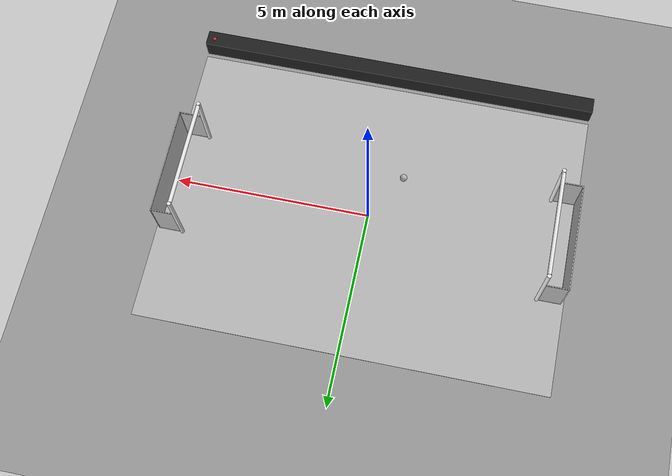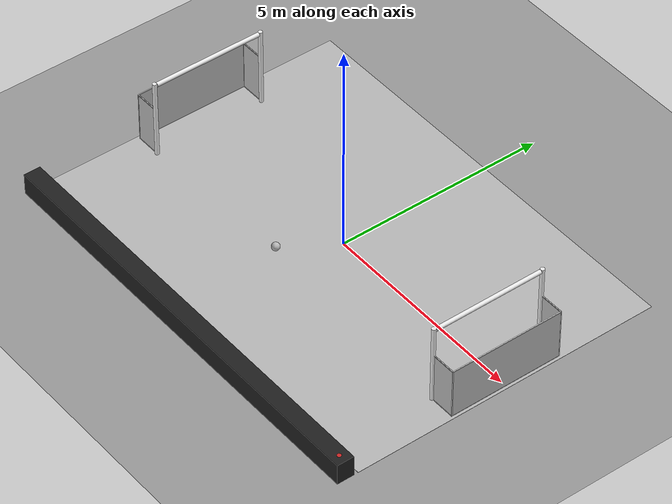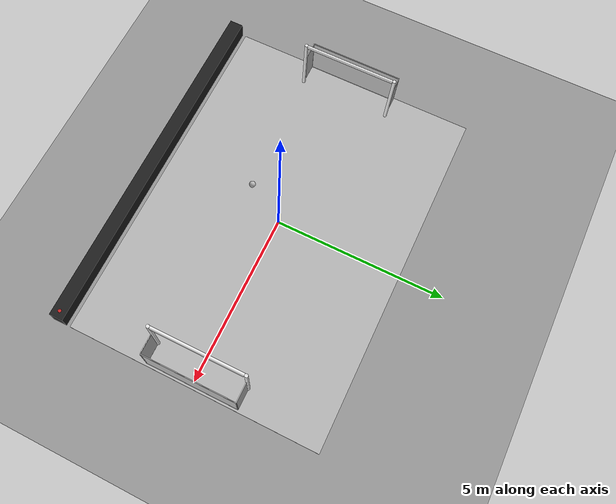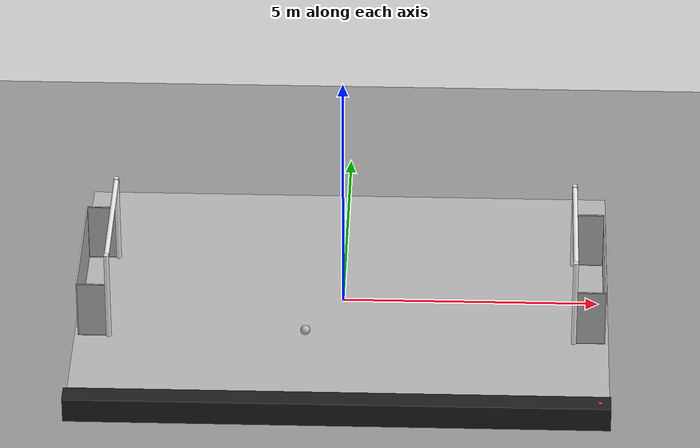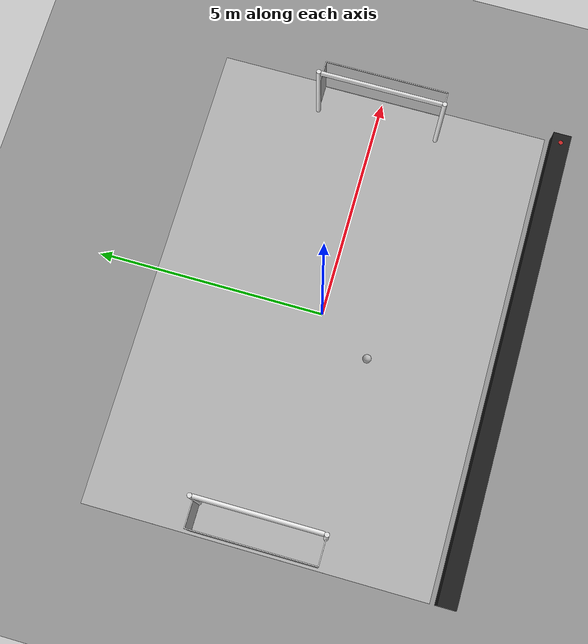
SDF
<?xml version="1.0" ?>
<sdf version="1.4">
	<world name="default">
		<scene>
			<shadows>false</shadows>
		</scene>
		<gui fullscreen='0'>
			<camera name="camera">
				<pose>3.0 0.0 1.0 0.0 0.3 3.14</pose>
			</camera>
		</gui>
		<physics type="ode">
			<gravity>0 0 -9.81</gravity>
			<real_time_update_rate>2000</real_time_update_rate>
			<max_step_size>0.0005</max_step_size>
			<ode>
				<solver>
					<type>quick</type>
					<iters>50</iters>
					<sor>1.4</sor>
				</solver>
				<constraints>
 					<cfm>0.0</cfm>
					<erp>0.2</erp>
					<contact_max_correcting_vel>100.0</contact_max_correcting_vel>
					<contact_surface_layer>0.0</contact_surface_layer>
				</constraints>
			</ode>
		</physics>
		<include>
			<uri>model://soft_ground_plane</uri>
		</include>
		<include>
			<uri>model://teensize_field</uri>
		</include>
		<include>
			<uri>model://teensize_ball</uri>
			<pose>-0.700000 -1.180000 0.095 0 0 0</pose>
		</include>
		<include>
			<uri>model://teensize_goal</uri>
			<pose>4.525 0 0 0 0 0</pose>
		</include>

		<include>
			<uri>model://teensize_goal</uri>
			<pose>-4.525 0 0 0 0 3.141592</pose>
		</include>

		<include>
			<uri>model://sun</uri>
		</include>
	</world>
</sdf>

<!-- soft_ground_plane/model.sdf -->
<sdf version="1.5">
  <model name="soft_ground_plane">
    <static>true</static>
    <link name="link">
      <collision name="collision">
        <geometry>
          <plane>
            <normal>0 0 1</normal>
            <size>100 100</size>
          </plane>
        </geometry>
        <surface>
          <friction>
            <ode>
              <mu>50</mu>
              <mu2>50</mu2>
            </ode>
          </friction>
          <contact>
            <ode>
              <soft_cfm>0.0</soft_cfm>
              <soft_erp>0.2</soft_erp>
            </ode>
          </contact>
        </surface>
      </collision>
      <visual name="visual">
        <cast_shadows>false</cast_shadows>
        <geometry>
          <plane>
            <normal>0 0 1</normal>
            <size>100 100</size>
          </plane>
        </geometry>
        <material>
          <script>
            <uri>file://media/materials/scripts/gazebo.material</uri>
            <name>Gazebo/Grey</name>
          </script>
        </material>
      </visual>
    </link>
  </model>
</sdf>

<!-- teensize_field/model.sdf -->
<sdf version="1.5">
  <model name="teensize_field">
    <static>true</static>

    <link name="field">
      <pose>0 0 0.005 0 0 0</pose>
      <visual name="carpet">
        <cast_shadows>false</cast_shadows>
        <geometry>
          <plane>
            <normal>0 0 1</normal>
            <size>10.40 7.40</size>
          </plane>
        </geometry>
        <material>
          <script>
            <uri>model://teensize_field/materials/scripts/</uri>
            <uri>model://teensize_field/materials/textures/</uri>
            <name>RoboCup/Carpet</name>
          </script>
        </material>
      </visual>

      <visual name="sideline_1">
        <pose>0 3 0.001 0 0 0</pose>
        <cast_shadows>false</cast_shadows>
        <geometry>
          <plane>
            <normal>0 0 1</normal>
            <size>9.05 0.05</size>
          </plane>
        </geometry>
        <material>
          <script>
            <uri>file://media/materials/scripts/gazebo.material</uri>
            <name>Gazebo/White</name>
          </script>
        </material>
      </visual>

      <visual name="sideline_2">
        <pose>0 -3 0.001 0 0 0</pose>
        <cast_shadows>false</cast_shadows>
        <geometry>
          <plane>
            <normal>0 0 1</normal>
            <size>9.05 0.05</size>
          </plane>
        </geometry>
        <material>
          <script>
            <uri>file://media/materials/scripts/gazebo.material</uri>
            <name>Gazebo/White</name>
          </script>
        </material>
      </visual>

      <visual name="endline_1">
        <pose>-4.5 0 0.001 0 0 0</pose>
        <cast_shadows>false</cast_shadows>
        <geometry>
          <plane>
            <normal>0 0 1</normal>
            <size>0.05 6.05</size>
          </plane>
        </geometry>
        <material>
          <script>
            <uri>file://media/materials/scripts/gazebo.material</uri>
            <name>Gazebo/White</name>
          </script>
        </material>
      </visual>

      <visual name="endline_2">
        <pose>4.5 0 0.001 0 0 0</pose>
        <cast_shadows>false</cast_shadows>
        <geometry>
          <plane>
            <normal>0 0 1</normal>
            <size>0.05 6.05</size>
          </plane>
        </geometry>
        <material>
          <script>
            <uri>file://media/materials/scripts/gazebo.material</uri>
            <name>Gazebo/White</name>
          </script>
        </material>
      </visual>

      <visual name="halfway_line">
        <pose>0 0 0.001 0 0 0</pose>
        <cast_shadows>false</cast_shadows>
        <geometry>
          <plane>
            <normal>0 0 1</normal>
            <size>0.05 6.05</size>
          </plane>
        </geometry>
        <material>
          <script>
            <uri>file://media/materials/scripts/gazebo.material</uri>
            <name>Gazebo/White</name>
          </script>
        </material>
      </visual>

      <visual name="area_1_line_a">
        <pose>-3.50 0 0.001 0 0 0</pose>
        <cast_shadows>false</cast_shadows>
        <geometry>
          <plane>
            <normal>0 0 1</normal>
            <size>0.05 5.05</size>
          </plane>
        </geometry>
        <material>
          <script>
            <uri>file://media/materials/scripts/gazebo.material</uri>
            <name>Gazebo/White</name>
          </script>
        </material>
      </visual>

      <visual name="area_2_line_a">
        <pose>-4.00 2.50 0.001 0 0 0</pose>
        <cast_shadows>false</cast_shadows>
        <geometry>
          <plane>
            <normal>0 0 1</normal>
            <size>1.05 0.05</size>
          </plane>
        </geometry>
        <material>
          <script>
            <uri>file://media/materials/scripts/gazebo.material</uri>
            <name>Gazebo/White</name>
          </script>
        </material>
      </visual>

      <visual name="area_3_line_a">
        <pose>-4.00 -2.50 0.001 0 0 0</pose>
        <cast_shadows>false</cast_shadows>
        <geometry>
          <plane>
            <normal>0 0 1</normal>
            <size>1.05 0.05</size>
          </plane>
        </geometry>
        <material>
          <script>
            <uri>file://media/materials/scripts/gazebo.material</uri>
            <name>Gazebo/White</name>
          </script>
        </material>
      </visual>

      <visual name="area_1_line_b">
        <pose>3.50 0 0.001 0 0 0</pose>
        <cast_shadows>false</cast_shadows>
        <geometry>
          <plane>
            <normal>0 0 1</normal>
            <size>0.05 5.05</size>
          </plane>
        </geometry>
        <material>
          <script>
            <uri>file://media/materials/scripts/gazebo.material</uri>
            <name>Gazebo/White</name>
          </script>
        </material>
      </visual>

      <visual name="area_2_line_b">
        <pose>4.00 2.50 0.001 0 0 0</pose>
        <cast_shadows>false</cast_shadows>
        <geometry>
          <plane>
            <normal>0 0 1</normal>
            <size>1.05 0.05</size>
          </plane>
        </geometry>
        <material>
          <script>
            <uri>file://media/materials/scripts/gazebo.material</uri>
            <name>Gazebo/White</name>
          </script>
        </material>
      </visual>

      <visual name="area_3_line_b">
        <pose>4.00 -2.50 0.001 0 0 0</pose>
        <cast_shadows>false</cast_shadows>
        <geometry>
          <plane>
            <normal>0 0 1</normal>
            <size>1.05 0.05</size>
          </plane>
        </geometry>
        <material>
          <script>
            <uri>file://media/materials/scripts/gazebo.material</uri>
            <name>Gazebo/White</name>
          </script>
        </material>
      </visual>

      <visual name="penalty_a">
        <pose>-2.40 0 0 0 0 0</pose>
        <cast_shadows>false</cast_shadows>
        <geometry>
          <cylinder>
            <radius>0.05</radius>
            <length>0.0005</length>
          </cylinder>
        </geometry>
        <material>
          <script>
            <uri>file://media/materials/scripts/gazebo.material</uri>
            <name>Gazebo/White</name>
          </script>
        </material>
      </visual>

      <visual name="penalty_b">
        <pose>2.40 0 0 0 0 0</pose>
        <cast_shadows>false</cast_shadows>
        <geometry>
          <cylinder>
            <radius>0.05</radius>
            <length>0.0005</length>
          </cylinder>
        </geometry>
        <material>
          <script>
            <uri>file://media/materials/scripts/gazebo.material</uri>
            <name>Gazebo/White</name>
          </script>
        </material>
      </visual>

      <visual name="center_point">
        <pose>0 0 0 0 0 0</pose>
        <cast_shadows>false</cast_shadows>
        <geometry>
          <cylinder>
            <radius>0.05</radius>
            <length>0.0005</length>
          </cylinder>
        </geometry>
        <material>
          <script>
            <uri>file://media/materials/scripts/gazebo.material</uri>
            <name>Gazebo/White</name>
          </script>
        </material>
      </visual>

      <visual name="center_circle">
        <pose>-0.775 -0.775 0.0005 0 0 0</pose>
        <cast_shadows>false</cast_shadows>
        <geometry>
          <mesh>
            <uri>model://teensize_field/mesh/annulus.stl</uri>
          </mesh>
        </geometry>
        <material>
          <script>
            <uri>file://media/materials/scripts/gazebo.material</uri>
            <name>Gazebo/White</name>
          </script>
        </material>
      </visual>

      <visual name="bench">
        <pose>0 -4.00 0.25 0 0 0</pose>
        <cast_shadows>false</cast_shadows>
        <geometry>
          <box>
            <size>10.4 0.4 0.5</size>
          </box>
        </geometry>
        <material>
          <script>
            <uri>file://media/materials/scripts/gazebo.material</uri>
            <name>Gazebo/FlatBlack</name>
          </script>
        </material>
      </visual>

      <visual name="positive goal">
        <pose>5.00 -4.00 0.5 0 0 0</pose>
        <cast_shadows>false</cast_shadows>
        <geometry>
          <cylinder>
            <radius>0.05</radius>
            <length>0.0005</length>
          </cylinder>
        </geometry>
        <material>
          <script>
            <uri>file://media/materials/scripts/gazebo.material</uri>
            <name>Gazebo/Red</name>
          </script>
        </material>
      </visual>

    </link>

  </model>
</sdf>

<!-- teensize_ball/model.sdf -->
<sdf version="1.5">
  <model name="teensize_ball"> <!-- The TeenSize ball is FIFA size 3, assumed to be diameter 19cm and weight 260 grams -->
    <pose>0 0 0.095 0 0 0</pose>
    <static>false</static>
    <link name="ball">
      <velocity_decay>
        <linear>0</linear>
        <angular>0.0008</angular>
      </velocity_decay>
      <inertial>
        <mass>0.260</mass>
        <inertia> <!-- For the origin of this inertia tensor refer to: https://en.wikipedia.org/wiki/List_of_moments_of_inertia#List_of_3D_inertia_tensors -->
          <ixx>0.00156</ixx>
          <iyy>0.00156</iyy>
          <izz>0.00156</izz>
          <ixy>0</ixy>
          <ixz>0</ixz>
          <iyz>0</iyz>
        </inertia>
      </inertial>
      <collision name="collision">
        <geometry>
          <sphere>
            <radius>0.095</radius>
          </sphere>
        </geometry>
      </collision>
      <visual name="visual">
        <geometry>
          <sphere>
            <radius>0.095</radius>
          </sphere>
        </geometry>
        <material>
          <script>
            <uri>model://teensize_ball/materials/scripts/</uri>
            <uri>model://teensize_ball/materials/textures/</uri>
            <name>RoboCup/Ball</name>
          </script>
        </material>
      </visual>
    </link>
  </model>
</sdf>

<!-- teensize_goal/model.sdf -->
<sdf version="1.5">
  <model name="teensize_goal">
    <static>true</static>
    <link name="left_post">
      <pose>0 1.35 0.95 0 0 0</pose>
      <collision name="collision">
        <geometry>
          <cylinder>
            <radius>0.05</radius>
            <length>1.9</length>
          </cylinder>
        </geometry>
      </collision>
      <visual name="visual">
        <geometry>
          <cylinder>
            <radius>0.05</radius>
            <length>1.9</length>
          </cylinder>
        </geometry>
        <material>
          <script>
            <uri>file://media/materials/scripts/gazebo.material</uri>
            <name>Gazebo/White</name>
          </script>
        </material>
      </visual>
    </link>
    <link name="left_support_horiz_lower">
      <pose>0.3 1.35 0.01 0 0 0</pose>
      <collision name="collision">
        <geometry>
          <box>
            <size>0.6 0.02 0.02</size>
          </box>
        </geometry>
      </collision>
      <visual name="visual">
        <geometry>
          <box>
            <size>0.6 0.02 0.02</size>
          </box>
        </geometry>
        <material>
          <script>
            <uri>file://media/materials/scripts/gazebo.material</uri>
            <name>Gazebo/White</name>
          </script>
        </material>
      </visual>
    </link>
    <link name="left_support_horiz_upper">
      <pose>0.3 1.35 1.2 0 0 0</pose>
      <collision name="collision">
        <geometry>
          <box>
            <size>0.6 0.02 0.02</size>
          </box>
        </geometry>
      </collision>
      <visual name="visual">
        <geometry>
          <box>
            <size>0.6 0.02 0.02</size>
          </box>
        </geometry>
        <material>
          <script>
            <uri>file://media/materials/scripts/gazebo.material</uri>
            <name>Gazebo/White</name>
          </script>
        </material>
      </visual>
    </link>
    <link name="left_support_vertical">
      <pose>0.6 1.35 0.6 0 1.5708 0</pose>
      <collision name="collision">
        <geometry>
          <box>
            <size>1.2 0.02 0.02</size>
          </box>
        </geometry>
      </collision>
      <visual name="visual">
        <geometry>
          <box>
            <size>1.2 0.02 0.02</size>
          </box>
        </geometry>
        <material>
          <script>
            <uri>file://media/materials/scripts/gazebo.material</uri>
            <name>Gazebo/White</name>
          </script>
        </material>
      </visual>
    </link>
    <link name="right_support_horiz_lower">
      <pose>0.3 -1.35 0.01 0 0 0</pose>
      <collision name="collision">
        <geometry>
          <box>
            <size>0.6 0.02 0.02</size>
          </box>
        </geometry>
      </collision>
      <visual name="visual">
        <geometry>
          <box>
            <size>0.6 0.02 0.02</size>
          </box>
        </geometry>
        <material>
          <script>
            <uri>file://media/materials/scripts/gazebo.material</uri>
            <name>Gazebo/White</name>
          </script>
        </material>
      </visual>
    </link>
    <link name="right_support_horiz_upper">
      <pose>0.3 -1.35 1.2 0 0 0</pose>
      <collision name="collision">
        <geometry>
          <box>
            <size>0.6 0.02 0.02</size>
          </box>
        </geometry>
      </collision>
      <visual name="visual">
        <geometry>
          <box>
            <size>0.6 0.02 0.02</size>
          </box>
        </geometry>
        <material>
          <script>
            <uri>file://media/materials/scripts/gazebo.material</uri>
            <name>Gazebo/White</name>
          </script>
        </material>
      </visual>
    </link>
    <link name="right_support_vertical">
      <pose>0.6 -1.35 0.6 0 1.5708 0</pose>
      <collision name="collision">
        <geometry>
          <box>
            <size>1.2 0.02 0.02</size>
          </box>
        </geometry>
      </collision>
      <visual name="visual">
        <geometry>
          <box>
            <size>1.2 0.02 0.02</size>
          </box>
        </geometry>
        <material>
          <script>
            <uri>file://media/materials/scripts/gazebo.material</uri>
            <name>Gazebo/White</name>
          </script>
        </material>
      </visual>
    </link>
    <link name="center_support_horiz_lower">
      <pose>0.6 0 0.01 0 1.5708 0</pose>
      <collision name="collision">
        <geometry>
          <box>
            <size>0.02 2.7 0.02</size>
          </box>
        </geometry>
      </collision>
      <visual name="visual">
        <geometry>
          <box>
            <size>0.02 2.7 0.02</size>
          </box>
        </geometry>
        <material>
          <script>
            <uri>file://media/materials/scripts/gazebo.material</uri>
            <name>Gazebo/White</name>
          </script>
        </material>
      </visual>
    </link>
    <link name="center_support_horiz_upper">
      <pose>0.6 0 1.2 0 1.5708 0</pose>
      <collision name="collision">
        <geometry>
          <box>
            <size>0.02 2.7 0.02</size>
          </box>
        </geometry>
      </collision>
      <visual name="visual">
        <geometry>
          <box>
            <size>0.02 2.7 0.02</size>
          </box>
        </geometry>
        <material>
          <script>
            <uri>file://media/materials/scripts/gazebo.material</uri>
            <name>Gazebo/White</name>
          </script>
        </material>
      </visual>
    </link>
    <link name="right_post">
      <pose>0 -1.35 0.95 0 0 0</pose>
      <collision name="collision">
        <geometry>
          <cylinder>
            <radius>0.05</radius>
            <length>1.9</length>
          </cylinder>
        </geometry>
      </collision>
      <visual name="visual">
        <geometry>
          <cylinder>
            <radius>0.05</radius>
            <length>1.9</length>
          </cylinder>
        </geometry>
        <material>
          <script>
            <uri>file://media/materials/scripts/gazebo.material</uri>
            <name>Gazebo/White</name>
          </script>
        </material>
      </visual>
    </link>
    <link name="crossbar">
      <pose>0 0 1.85 1.57 1.57 0</pose>
      <collision name="collision">
        <geometry>
          <cylinder>
            <radius>0.05</radius>
            <length>2.6</length>
          </cylinder>
        </geometry>
      </collision>
      <visual name="visual">
        <geometry>
          <cylinder>
            <radius>0.05</radius>
            <length>2.6</length>
          </cylinder>
        </geometry>
        <material>
          <script>
            <uri>file://media/materials/scripts/gazebo.material</uri>
            <name>Gazebo/White</name>
          </script>
        </material>
      </visual>
    </link>
    <link name="center_net">
      <pose>0.6 0 0.6 0 0 0</pose>
      <collision name="collision">
        <geometry>
          <box>
            <size>0.01 2.7 1.2</size>
          </box>
        </geometry>
      </collision>
      <visual name="visual">
        <geometry>
          <box>
            <size>0.01 2.7 1.2</size>
          </box>
        </geometry>
        <material>
          <script>
            <uri>model://teensize_goal/materials/scripts/</uri>
            <uri>model://teensize_goal/materials/textures/</uri>
            <name>RoboCup/Net</name>
          </script>
        </material>
      </visual>
    </link>
    <link name="left_net">
      <pose>0.3 1.35 0.6 0 0 0</pose>
      <collision name="collision">
        <geometry>
          <box>
            <size>0.6 0.01 1.2</size>
          </box>
        </geometry>
      </collision>
      <visual name="visual">
        <geometry>
          <box>
            <size>0.6 0.01 1.2</size>
          </box>
        </geometry>
        <material>
          <script>
            <uri>model://teensize_goal/materials/scripts/</uri>
            <uri>model://teensize_goal/materials/textures/</uri>
            <name>RoboCup/Net</name>
          </script>
        </material>
      </visual>
    </link>
    <link name="right_net">
      <pose>0.3 -1.35 0.6 0 0 0</pose>
      <collision name="collision">
        <geometry>
          <box>
            <size>0.6 0.01 1.2</size>
          </box>
        </geometry>
      </collision>
      <visual name="visual">
        <geometry>
          <box>
            <size>0.6 0.01 1.2</size>
          </box>
        </geometry>
        <material>
          <script>
            <uri>model://teensize_goal/materials/scripts/</uri>
            <uri>model://teensize_goal/materials/textures/</uri>
            <name>RoboCup/Net</name>
          </script>
        </material>
      </visual>
    </link>
  </model>
</sdf>
